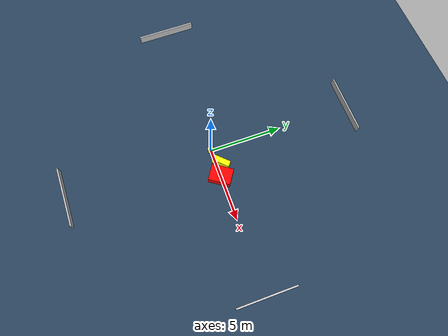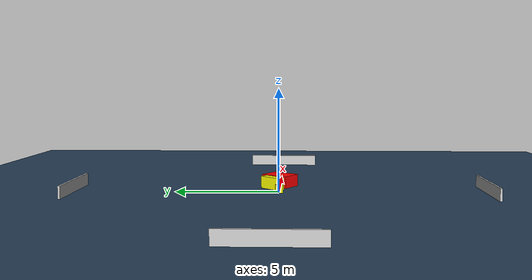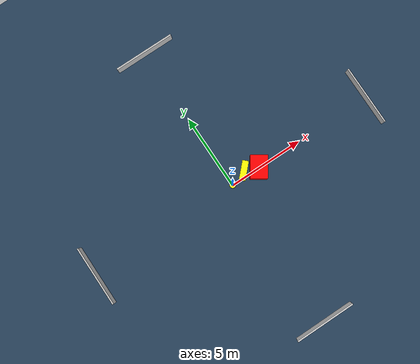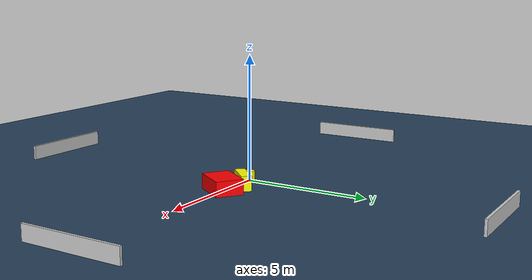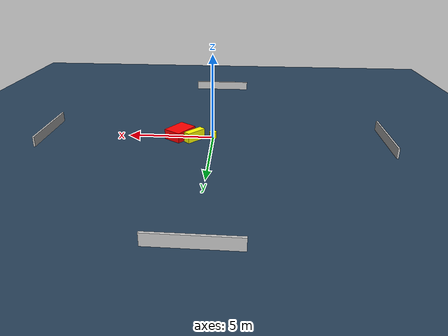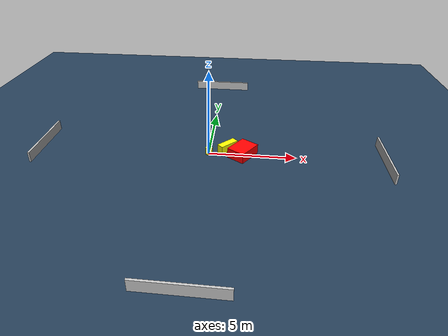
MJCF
<?xml version="1.0" ?>
<mujoco model="generated_environment">
  <option timestep="0.01" integrator="RK4" cone="elliptic"/>
  <default>
    <geom density="1"/>
  </default>
  <asset>
    <texture builtin="gradient" height="3072" name="skybox" rgb1="0.3 0.5 0.7" rgb2="0 0 0" type="skybox" width="512"/>
    <texture builtin="checker" height="300" name="groundplane" rgb1="0.2 0.3 0.4" rgb2="0.1 0.2 0.3" type="2d" width="300"/>
    <material name="groundplane" reflectance="0.2" texrepeat="5 5" texture="groundplane"/>
  </asset>
  <worldbody>
    <light dir="0 0 -1" directional="true" pos="0 0 1.5"/>
    <geom condim="3" friction="0.5 0.005 0.001" material="groundplane" name="floor" pos="0 0 0" size="0 0 0.05" type="plane"/>
    <body name="walls">
      <geom name="wall_1" condim="4" pos="-10.0 0.0 0.3" rgba="0.800000011920929 0.800000011920929 0.800000011920929 1.0" size="0.05 2.0 0.3" type="box"/>
      <geom name="wall_2" condim="4" pos="10.0 0.0 0.3" rgba="0.800000011920929 0.800000011920929 0.800000011920929 1.0" size="0.05 2.0 0.3" type="box"/>
      <geom name="wall_3" condim="4" pos="0.0 -10.0 0.3" rgba="0.800000011920929 0.800000011920929 0.800000011920929 1.0" size="2.0 0.05 0.3" type="box"/>
      <geom name="wall_4" condim="4" pos="0.0 10.0 0.3" rgba="0.800000011920929 0.800000011920929 0.800000011920929 1.0" size="2.0 0.05 0.3" type="box"/>
    </body>
    <body name="robot">
      <joint name="joint_x" type="slide" pos="0 0 0" axis="1 0 0"/>
      <joint name="joint_y" type="slide" pos="0 0 0" axis="0 1 0"/>
      <geom name="robot" type="cylinder" pos="0.0 0.0 0.2" size="0.2 0.2 0.0" mass="5.0" friction="1.0 0.005 0.0001" condim="4" rgba="1.0 1.0 0.0 1.0"/>
    </body>
    <body name="obstacle_1_movable">
      <geom name="obstacle_1_movable" condim="4" pos="1.0617004273245463 0.35313885217542645 0.3" euler="0 0 45.96104390258387" friction="0.0 0.005 0.001" rgba="1.0 1.0 0.0 1.0" size="0.6102589431397554 0.20390972865642565 0.3" type="box" mass="0.1"/>
      <joint type="free"/>
    </body>
    <body name="obstacle_2_static">
      <geom name="obstacle_2_static" condim="4" pos="1.958838846895777 0.01562754310924519 0.3" euler="0 0 146.07654116598485" friction="0.0 0.005 0.001" rgba="1.0 0.0 0.0 1.0" size="0.5482090120106056 0.7361202165093732 0.3" type="box"/>
    </body>
  </worldbody>
  <actuator>
    <motor name="actuator_x" joint="joint_x" gear="1" ctrlrange="-1 1"/>
    <motor name="actuator_y" joint="joint_y" gear="1" ctrlrange="-1 1"/>
  </actuator>
</mujoco>
